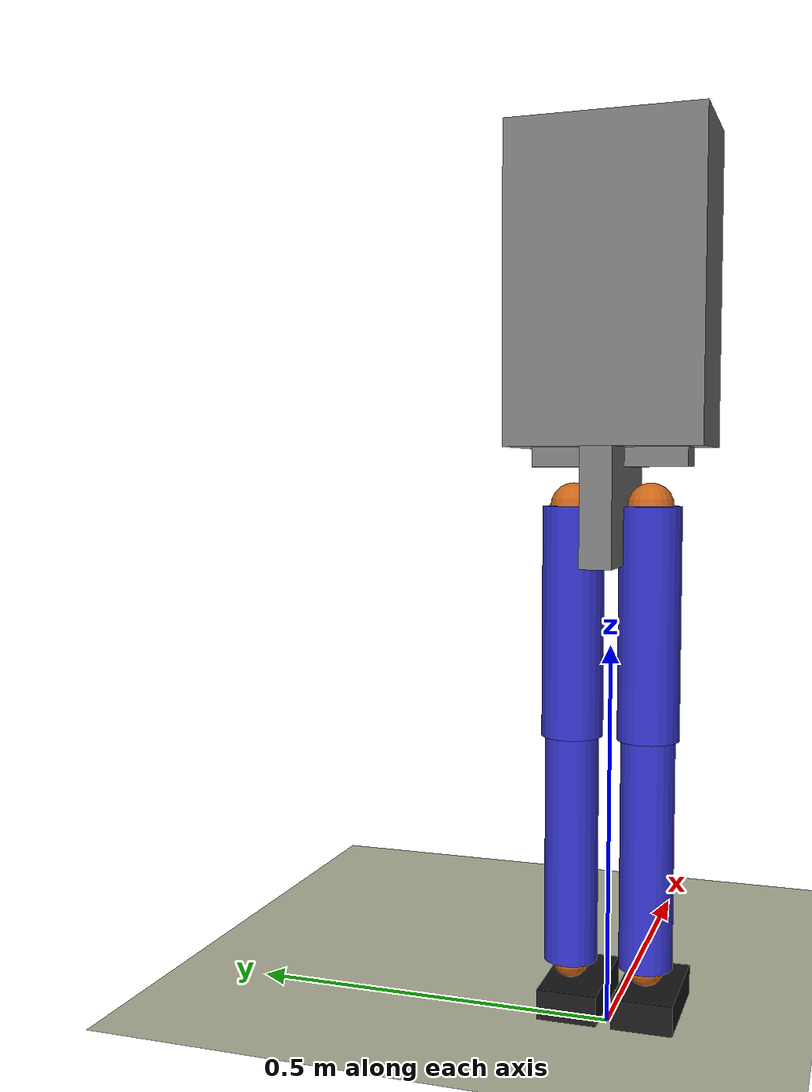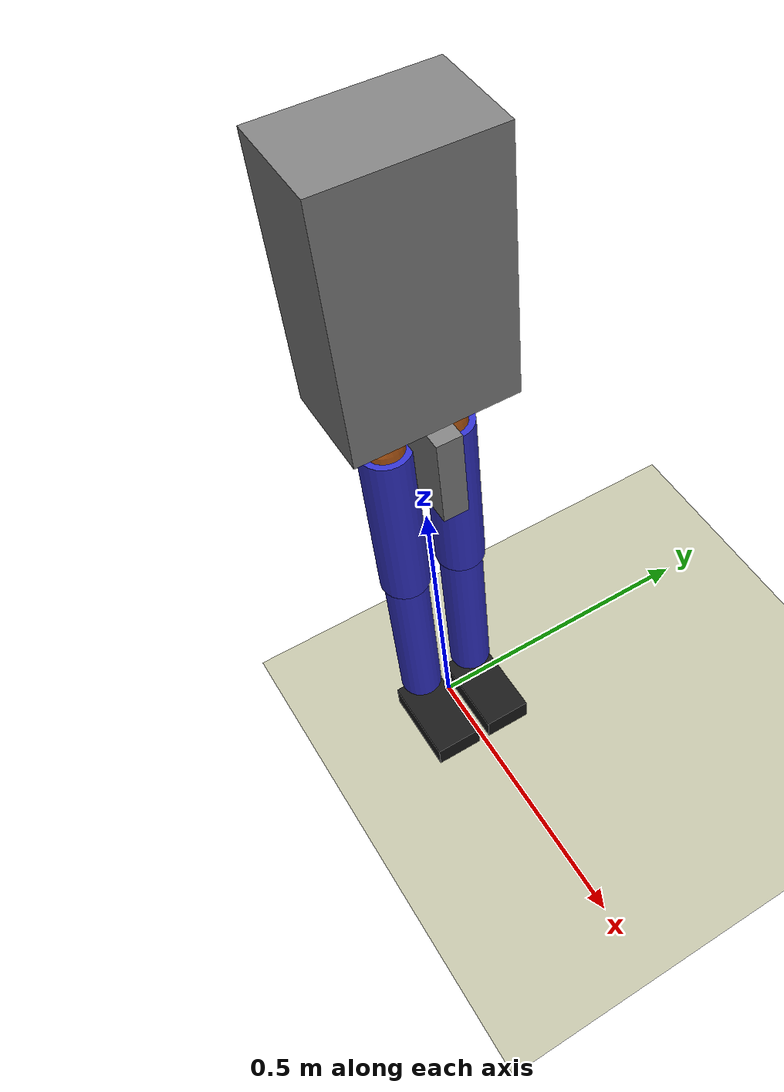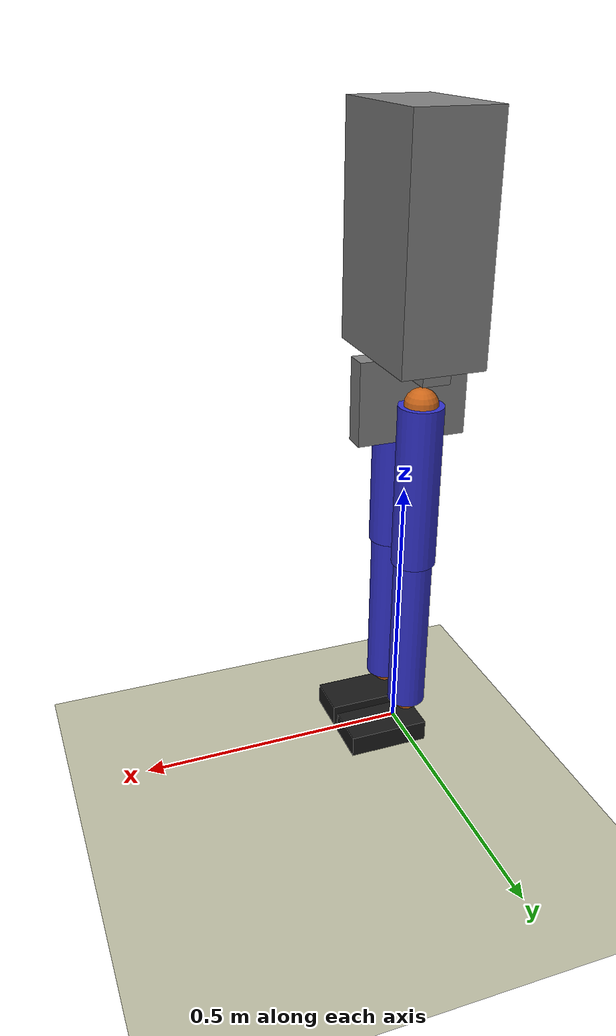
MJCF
<?xml version="1.0" ?>
<mujoco model="megadroid_mvs">
  <compiler angle="radian" inertiafromgeom="false"/>
  <option gravity="0 0 -9.81" timestep="0.002"/>
  <visual>
    <headlight ambient=".4 .4 .4" diffuse=".8 .8 .8" specular="0 0 0"/>
  </visual>
  <default>
    <geom condim="3" friction="0.8 0.02 0.01" solimp="0.9 0.95 0.001"/>
    <joint damping="2.0" armature="0.02" frictionloss="0.1"/>
  </default>
  <worldbody>
    <light name="sun" pos="0 0 4" dir="0 0 -1" diffuse="0.8 0.8 0.8" specular="0.2 0.2 0.2"/>
    <geom name="ground" type="plane" size="3 3 0.1" pos="0 0 0" rgba="0.75 0.75 0.65 1" friction="0.8 0.02 0.01"/>
    <body name="pelvis" pos="0 0 0.6800">
      <freejoint name="root"/>
      <inertial mass="1.5" pos="0.000000 0.000000 0.000000" diaginertia="0.00301250 0.00781250 0.00520000"/>
      <geom name="pelvis_geom" type="box" size="0.10 0.0200 0.075" pos="0 0 0" rgba="0.5 0.5 0.5 1"/>
      <site name="imu_site" pos="0 0 0" size="0.005"/>
      <body name="left_hip_roll_link" pos="0 0.0500 0">
        <joint name="left_hip_roll" type="hinge" axis="1 0 0" range="-0.523599 0.523599"/>
        <inertial mass="0.3" pos="0.000000 0.000000 0.000000" diaginertia="0.00010800 0.00010800 0.00010800"/>
        <geom name="left_hip_roll_geom" type="sphere" size="0.03" rgba="0.8 0.4 0.1 1"/>
        <body name="left_thigh" pos="0 0 0">
          <joint name="left_hip_pitch" type="hinge" axis="0 1 0" range="-0.523599 1.919862"/>
          <inertial mass="0.9" pos="0.000000 0.000000 -0.150000" diaginertia="0.00711000 0.00711000 0.00072000"/>
          <geom name="left_thigh_geom" type="cylinder" size="0.040 0.1500" pos="0 0 -0.1500" rgba="0.2 0.2 0.8 1"/>
          <body name="left_shin" pos="0 0 -0.3000">
            <joint name="left_knee_pitch" type="hinge" axis="0 1 0" range="0.000000 2.443461"/>
            <inertial mass="0.7" pos="0.000000 0.000000 -0.150000" diaginertia="0.00546437 0.00546437 0.00042875"/>
            <geom name="left_shin_geom" type="cylinder" size="0.035 0.1500" pos="0 0 -0.1500" rgba="0.2 0.2 0.8 1"/>
            <body name="left_ankle" pos="0 0 -0.3000">
              <joint name="left_ankle_pitch" type="hinge" axis="0 1 0" range="-0.523599 0.523599"/>
              <inertial mass="0.35" pos="0.000000 0.000000 0.000000" diaginertia="0.00008750 0.00008750 0.00008750"/>
              <geom name="left_ankle_geom" type="sphere" size="0.025" rgba="0.8 0.4 0.1 1"/>
              <body name="left_ankle_roll" pos="0 0 0">
                <joint name="left_ankle_roll" type="hinge" axis="1 0 0" range="-0.261799 0.261799"/>
                <inertial mass="0.35" pos="0.000000 0.000000 0.000000" diaginertia="0.00005600 0.00005600 0.00005600"/>
                <geom name="left_ankle_roll_geom" type="sphere" size="0.020" rgba="0.8 0.4 0.1 1"/>
                <body name="left_ft_sensor" pos="0 0 0">
                  <body name="left_foot" pos="0.05 0 -0.0800">
                    <site name="left_ft_site" pos="0 0 0"/>
                    <inertial mass="0.15" pos="0.000000 0.000000 0.000000" diaginertia="0.00010000 0.00030125 0.00036125"/>
                    <geom name="left_foot_geom" type="box" size="0.075 0.040 0.020" pos="0 0 0.020" solref="0.05 1.0" rgba="0.1 0.1 0.1 1"/>
                  </body>
                </body>
              </body>
            </body>
          </body>
        </body>
      </body>
      <body name="right_hip_roll_link" pos="0 -0.0500 0">
        <joint name="right_hip_roll" type="hinge" axis="1 0 0" range="-0.523599 0.523599"/>
        <inertial mass="0.3" pos="0.000000 0.000000 0.000000" diaginertia="0.00010800 0.00010800 0.00010800"/>
        <geom name="right_hip_roll_geom" type="sphere" size="0.03" rgba="0.8 0.4 0.1 1"/>
        <body name="right_thigh" pos="0 0 0">
          <joint name="right_hip_pitch" type="hinge" axis="0 1 0" range="-0.523599 1.919862"/>
          <inertial mass="0.9" pos="0.000000 0.000000 -0.150000" diaginertia="0.00711000 0.00711000 0.00072000"/>
          <geom name="right_thigh_geom" type="cylinder" size="0.040 0.1500" pos="0 0 -0.1500" rgba="0.2 0.2 0.8 1"/>
          <body name="right_shin" pos="0 0 -0.3000">
            <joint name="right_knee_pitch" type="hinge" axis="0 1 0" range="0.000000 2.443461"/>
            <inertial mass="0.7" pos="0.000000 0.000000 -0.150000" diaginertia="0.00546437 0.00546437 0.00042875"/>
            <geom name="right_shin_geom" type="cylinder" size="0.035 0.1500" pos="0 0 -0.1500" rgba="0.2 0.2 0.8 1"/>
            <body name="right_ankle" pos="0 0 -0.3000">
              <joint name="right_ankle_pitch" type="hinge" axis="0 1 0" range="-0.523599 0.523599"/>
              <inertial mass="0.35" pos="0.000000 0.000000 0.000000" diaginertia="0.00008750 0.00008750 0.00008750"/>
              <geom name="right_ankle_geom" type="sphere" size="0.025" rgba="0.8 0.4 0.1 1"/>
              <body name="right_ankle_roll" pos="0 0 0">
                <joint name="right_ankle_roll" type="hinge" axis="1 0 0" range="-0.261799 0.261799"/>
                <inertial mass="0.35" pos="0.000000 0.000000 0.000000" diaginertia="0.00005600 0.00005600 0.00005600"/>
                <geom name="right_ankle_roll_geom" type="sphere" size="0.020" rgba="0.8 0.4 0.1 1"/>
                <body name="right_ft_sensor" pos="0 0 0">
                  <body name="right_foot" pos="0.05 0 -0.0800">
                    <site name="right_ft_site" pos="0 0 0"/>
                    <inertial mass="0.15" pos="0.000000 0.000000 0.000000" diaginertia="0.00010000 0.00030125 0.00036125"/>
                    <geom name="right_foot_geom" type="box" size="0.075 0.040 0.020" pos="0 0 0.020" solref="0.05 1.0" rgba="0.1 0.1 0.1 1"/>
                  </body>
                </body>
              </body>
            </body>
          </body>
        </body>
      </body>
      <body name="torso_pitch_link" pos="0 0 0.075">
        <joint name="torso_pitch" type="hinge" axis="0 1 0" range="-0.523599 0.523599"/>
        <inertial mass="0.3" pos="0.000000 0.000000 0.000000" diaginertia="0.00106250 0.00012500 0.00106250"/>
        <geom name="torso_pitch_link_geom" type="box" size="0.025 0.10 0.025" rgba="0.5 0.5 0.5 1"/>
        <body name="torso_roll_link" pos="0 0 0">
          <joint name="torso_roll" type="hinge" axis="1 0 0" range="-0.349066 0.349066"/>
          <inertial mass="0.3" pos="0.000000 0.000000 0.000000" diaginertia="0.00106250 0.00012500 0.00106250"/>
          <geom name="torso_roll_link_geom" type="box" size="0.025 0.10 0.025" rgba="0.5 0.5 0.5 1"/>
          <body name="torso" pos="0 0 0">
            <joint name="torso_yaw" type="hinge" axis="0 0 1" range="-0.785398 0.785398"/>
            <inertial mass="2.0" pos="0.000000 0.000000 0.200000" diaginertia="0.03708333 0.03041667 0.01416667"/>
            <geom name="torso_geom" type="box" size="0.075 0.125 0.20" pos="0 0 0.20" rgba="0.5 0.5 0.5 1"/>
          </body>
        </body>
      </body>
    </body>
  </worldbody>
  <contact>
    <exclude body1="pelvis" body2="left_thigh"/>
    <exclude body1="pelvis" body2="right_thigh"/>
    <exclude body1="pelvis" body2="torso_roll_link"/>
    <exclude body1="pelvis" body2="torso"/>
    <exclude body1="torso_pitch_link" body2="torso"/>
  </contact>
  <actuator>
    <position name="act_left_hip_pitch" joint="left_hip_pitch" kp="150" forcerange="-11.200000 11.200000" ctrlrange="-0.523599 1.919862"/>
    <position name="act_right_hip_pitch" joint="right_hip_pitch" kp="150" forcerange="-11.200000 11.200000" ctrlrange="-0.523599 1.919862"/>
    <position name="act_left_hip_roll" joint="left_hip_roll" kp="150" forcerange="-11.200000 11.200000" ctrlrange="-0.523599 0.523599"/>
    <position name="act_right_hip_roll" joint="right_hip_roll" kp="150" forcerange="-11.200000 11.200000" ctrlrange="-0.523599 0.523599"/>
    <position name="act_left_knee_pitch" joint="left_knee_pitch" kp="150" forcerange="-11.200000 11.200000" ctrlrange="0.000000 2.443461"/>
    <position name="act_right_knee_pitch" joint="right_knee_pitch" kp="150" forcerange="-11.200000 11.200000" ctrlrange="0.000000 2.443461"/>
    <position name="act_left_ankle_pitch" joint="left_ankle_pitch" kp="150" forcerange="-11.200000 11.200000" ctrlrange="-0.523599 0.523599"/>
    <position name="act_right_ankle_pitch" joint="right_ankle_pitch" kp="150" forcerange="-11.200000 11.200000" ctrlrange="-0.523599 0.523599"/>
    <position name="act_left_ankle_roll" joint="left_ankle_roll" kp="150" forcerange="-11.200000 11.200000" ctrlrange="-0.261799 0.261799"/>
    <position name="act_right_ankle_roll" joint="right_ankle_roll" kp="150" forcerange="-11.200000 11.200000" ctrlrange="-0.261799 0.261799"/>
    <position name="act_torso_pitch" joint="torso_pitch" kp="150" forcerange="-11.200000 11.200000" ctrlrange="-0.523599 0.523599"/>
    <position name="act_torso_roll" joint="torso_roll" kp="150" forcerange="-11.200000 11.200000" ctrlrange="-0.349066 0.349066"/>
    <position name="act_torso_yaw" joint="torso_yaw" kp="150" forcerange="-11.200000 11.200000" ctrlrange="-0.785398 0.785398"/>
  </actuator>
  <sensor>
    <framepos name="pelvis_pos" objtype="body" objname="pelvis"/>
    <framepos name="left_foot_pos" objtype="body" objname="left_foot"/>
    <framepos name="right_foot_pos" objtype="body" objname="right_foot"/>
    <framequat name="pelvis_quat" objtype="body" objname="pelvis"/>
    <force name="left_ft_force" site="left_ft_site"/>
    <torque name="left_ft_torque" site="left_ft_site"/>
    <force name="right_ft_force" site="right_ft_site"/>
    <torque name="right_ft_torque" site="right_ft_site"/>
    <gyro name="imu_gyro" site="imu_site"/>
    <accelerometer name="imu_accel" site="imu_site"/>
  </sensor>
</mujoco>
